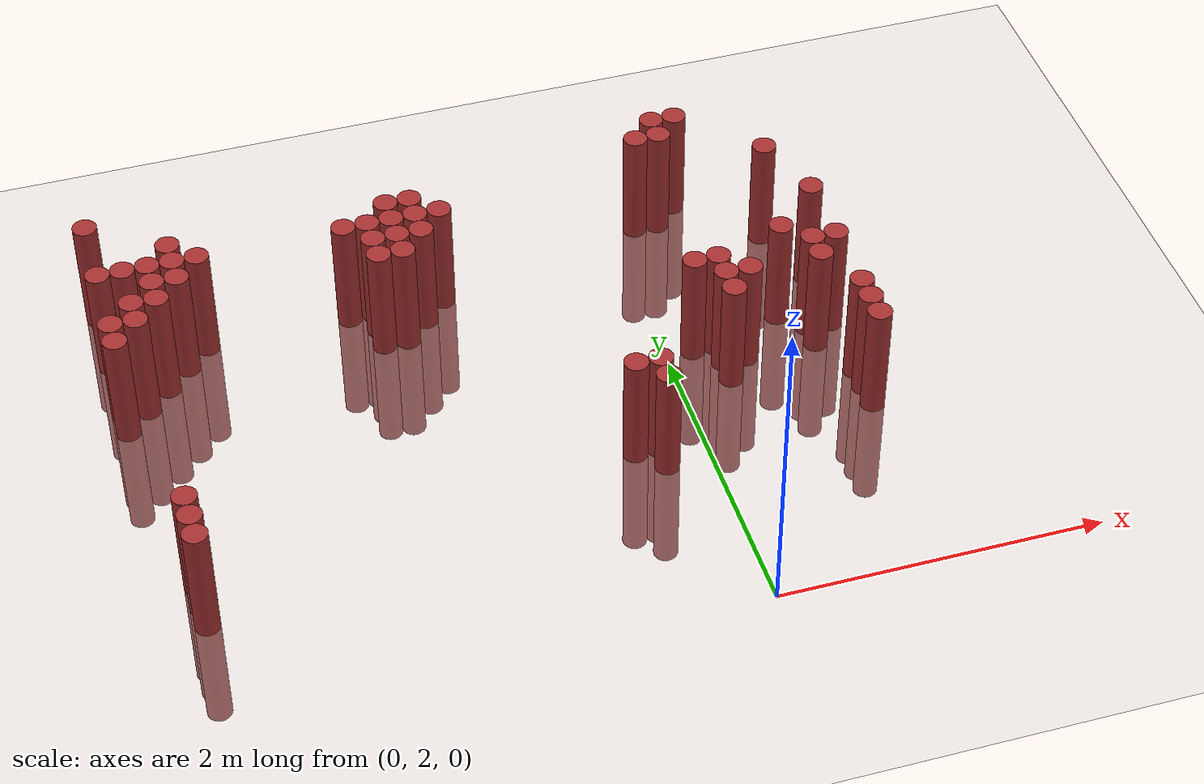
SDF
<sdf version="1.6">
 <world name="default">
  <model name="ground_plane">
   <static>1</static>
   <link name="link">
    <collision name="collision">
     <geometry><plane><normal>0 0 1</normal><size>100 100</size></plane></geometry>
     <surface><friction><ode><mu>100</mu><mu2>50</mu2></ode></friction></surface>
    </collision>
    <visual name="visual">
     <cast_shadows>0</cast_shadows>
     <geometry><plane><normal>0 0 1</normal><size>100 100</size></plane></geometry>
     <material>
      <script><uri>file://media/materials/scripts/gazebo.material</uri><name>Gazebo/Grey</name></script>
     </material>
    </visual>
   </link>
  </model>
  <model name="unit_cylinder_276">
   <static>1</static>
   <pose>-3.275000 4.375000 0.000000 0.000000 0.000000 0.000000</pose>
   <link name="link">
    <inertial>
     <mass>1</mass>
     <inertia><ixx>0.145833</ixx><ixy>0</ixy><ixz>0</ixz><iyy>0.145833</iyy><iyz>0</iyz><izz>0.125</izz></inertia>
    </inertial>
    <collision name="collision">
     <geometry><cylinder><radius>0.075000</radius><length>1.5</length></cylinder></geometry>
    </collision>
    <visual name="visual">
     <geometry><cylinder><radius>0.075000</radius><length>1.5</length></cylinder></geometry>
     <material>
      <ambient>0.648000 0.192000 0.192000 1</ambient>
      <diffuse>0.648000 0.192000 0.192000 1</diffuse>
     </material>
     <material>
      <script><name>Gazebo/Grey</name><uri>file://media/materials/scripts/gazebo.material</uri></script>
     </material>
    </visual>
   </link>
  </model>
  <model name="unit_cylinder_277">
   <static>1</static>
   <pose>-3.275000 4.525000 0.000000 0.000000 0.000000 0.000000</pose>
   <link name="link">
    <inertial>
     <mass>1</mass>
     <inertia><ixx>0.145833</ixx><ixy>0</ixy><ixz>0</ixz><iyy>0.145833</iyy><iyz>0</iyz><izz>0.125</izz></inertia>
    </inertial>
    <collision name="collision">
     <geometry><cylinder><radius>0.075000</radius><length>1.5</length></cylinder></geometry>
    </collision>
    <visual name="visual">
     <geometry><cylinder><radius>0.075000</radius><length>1.5</length></cylinder></geometry>
     <material>
      <ambient>0.648000 0.192000 0.192000 1</ambient>
      <diffuse>0.648000 0.192000 0.192000 1</diffuse>
     </material>
     <material>
      <script><name>Gazebo/Grey</name><uri>file://media/materials/scripts/gazebo.material</uri></script>
     </material>
    </visual>
   </link>
  </model>
  <model name="unit_cylinder_278">
   <static>1</static>
   <pose>-3.275000 4.975000 0.000000 0.000000 0.000000 0.000000</pose>
   <link name="link">
    <inertial>
     <mass>1</mass>
     <inertia><ixx>0.145833</ixx><ixy>0</ixy><ixz>0</ixz><iyy>0.145833</iyy><iyz>0</iyz><izz>0.125</izz></inertia>
    </inertial>
    <collision name="collision">
     <geometry><cylinder><radius>0.075000</radius><length>1.5</length></cylinder></geometry>
    </collision>
    <visual name="visual">
     <geometry><cylinder><radius>0.075000</radius><length>1.5</length></cylinder></geometry>
     <material>
      <ambient>0.648000 0.192000 0.192000 1</ambient>
      <diffuse>0.648000 0.192000 0.192000 1</diffuse>
     </material>
     <material>
      <script><name>Gazebo/Grey</name><uri>file://media/materials/scripts/gazebo.material</uri></script>
     </material>
    </visual>
   </link>
  </model>
  <model name="unit_cylinder_279">
   <static>1</static>
   <pose>-3.275000 5.425000 0.000000 0.000000 0.000000 0.000000</pose>
   <link name="link">
    <inertial>
     <mass>1</mass>
     <inertia><ixx>0.145833</ixx><ixy>0</ixy><ixz>0</ixz><iyy>0.145833</iyy><iyz>0</iyz><izz>0.125</izz></inertia>
    </inertial>
    <collision name="collision">
     <geometry><cylinder><radius>0.075000</radius><length>1.5</length></cylinder></geometry>
    </collision>
    <visual name="visual">
     <geometry><cylinder><radius>0.075000</radius><length>1.5</length></cylinder></geometry>
     <material>
      <ambient>0.648000 0.192000 0.192000 1</ambient>
      <diffuse>0.648000 0.192000 0.192000 1</diffuse>
     </material>
     <material>
      <script><name>Gazebo/Grey</name><uri>file://media/materials/scripts/gazebo.material</uri></script>
     </material>
    </visual>
   </link>
  </model>
  <model name="unit_cylinder_285">
   <static>1</static>
   <pose>-3.125000 2.725000 0.000000 0.000000 0.000000 0.000000</pose>
   <link name="link">
    <inertial>
     <mass>1</mass>
     <inertia><ixx>0.145833</ixx><ixy>0</ixy><ixz>0</ixz><iyy>0.145833</iyy><iyz>0</iyz><izz>0.125</izz></inertia>
    </inertial>
    <collision name="collision">
     <geometry><cylinder><radius>0.075000</radius><length>1.5</length></cylinder></geometry>
    </collision>
    <visual name="visual">
     <geometry><cylinder><radius>0.075000</radius><length>1.5</length></cylinder></geometry>
     <material>
      <ambient>0.648000 0.192000 0.192000 1</ambient>
      <diffuse>0.648000 0.192000 0.192000 1</diffuse>
     </material>
     <material>
      <script><name>Gazebo/Grey</name><uri>file://media/materials/scripts/gazebo.material</uri></script>
     </material>
    </visual>
   </link>
  </model>
  <model name="unit_cylinder_286">
   <static>1</static>
   <pose>-3.125000 2.875000 0.000000 0.000000 0.000000 0.000000</pose>
   <link name="link">
    <inertial>
     <mass>1</mass>
     <inertia><ixx>0.145833</ixx><ixy>0</ixy><ixz>0</ixz><iyy>0.145833</iyy><iyz>0</iyz><izz>0.125</izz></inertia>
    </inertial>
    <collision name="collision">
     <geometry><cylinder><radius>0.075000</radius><length>1.5</length></cylinder></geometry>
    </collision>
    <visual name="visual">
     <geometry><cylinder><radius>0.075000</radius><length>1.5</length></cylinder></geometry>
     <material>
      <ambient>0.648000 0.192000 0.192000 1</ambient>
      <diffuse>0.648000 0.192000 0.192000 1</diffuse>
     </material>
     <material>
      <script><name>Gazebo/Grey</name><uri>file://media/materials/scripts/gazebo.material</uri></script>
     </material>
    </visual>
   </link>
  </model>
  <model name="unit_cylinder_287">
   <static>1</static>
   <pose>-3.125000 3.025000 0.000000 0.000000 0.000000 0.000000</pose>
   <link name="link">
    <inertial>
     <mass>1</mass>
     <inertia><ixx>0.145833</ixx><ixy>0</ixy><ixz>0</ixz><iyy>0.145833</iyy><iyz>0</iyz><izz>0.125</izz></inertia>
    </inertial>
    <collision name="collision">
     <geometry><cylinder><radius>0.075000</radius><length>1.5</length></cylinder></geometry>
    </collision>
    <visual name="visual">
     <geometry><cylinder><radius>0.075000</radius><length>1.5</length></cylinder></geometry>
     <material>
      <ambient>0.648000 0.192000 0.192000 1</ambient>
      <diffuse>0.648000 0.192000 0.192000 1</diffuse>
     </material>
     <material>
      <script><name>Gazebo/Grey</name><uri>file://media/materials/scripts/gazebo.material</uri></script>
     </material>
    </visual>
   </link>
  </model>
  <model name="unit_cylinder_288">
   <static>1</static>
   <pose>-3.125000 4.525000 0.000000 0.000000 0.000000 0.000000</pose>
   <link name="link">
    <inertial>
     <mass>1</mass>
     <inertia><ixx>0.145833</ixx><ixy>0</ixy><ixz>0</ixz><iyy>0.145833</iyy><iyz>0</iyz><izz>0.125</izz></inertia>
    </inertial>
    <collision name="collision">
     <geometry><cylinder><radius>0.075000</radius><length>1.5</length></cylinder></geometry>
    </collision>
    <visual name="visual">
     <geometry><cylinder><radius>0.075000</radius><length>1.5</length></cylinder></geometry>
     <material>
      <ambient>0.648000 0.192000 0.192000 1</ambient>
      <diffuse>0.648000 0.192000 0.192000 1</diffuse>
     </material>
     <material>
      <script><name>Gazebo/Grey</name><uri>file://media/materials/scripts/gazebo.material</uri></script>
     </material>
    </visual>
   </link>
  </model>
  <model name="unit_cylinder_289">
   <static>1</static>
   <pose>-3.125000 4.675000 0.000000 0.000000 0.000000 0.000000</pose>
   <link name="link">
    <inertial>
     <mass>1</mass>
     <inertia><ixx>0.145833</ixx><ixy>0</ixy><ixz>0</ixz><iyy>0.145833</iyy><iyz>0</iyz><izz>0.125</izz></inertia>
    </inertial>
    <collision name="collision">
     <geometry><cylinder><radius>0.075000</radius><length>1.5</length></cylinder></geometry>
    </collision>
    <visual name="visual">
     <geometry><cylinder><radius>0.075000</radius><length>1.5</length></cylinder></geometry>
     <material>
      <ambient>0.648000 0.192000 0.192000 1</ambient>
      <diffuse>0.648000 0.192000 0.192000 1</diffuse>
     </material>
     <material>
      <script><name>Gazebo/Grey</name><uri>file://media/materials/scripts/gazebo.material</uri></script>
     </material>
    </visual>
   </link>
  </model>
  <model name="unit_cylinder_290">
   <static>1</static>
   <pose>-3.125000 4.975000 0.000000 0.000000 0.000000 0.000000</pose>
   <link name="link">
    <inertial>
     <mass>1</mass>
     <inertia><ixx>0.145833</ixx><ixy>0</ixy><ixz>0</ixz><iyy>0.145833</iyy><iyz>0</iyz><izz>0.125</izz></inertia>
    </inertial>
    <collision name="collision">
     <geometry><cylinder><radius>0.075000</radius><length>1.5</length></cylinder></geometry>
    </collision>
    <visual name="visual">
     <geometry><cylinder><radius>0.075000</radius><length>1.5</length></cylinder></geometry>
     <material>
      <ambient>0.648000 0.192000 0.192000 1</ambient>
      <diffuse>0.648000 0.192000 0.192000 1</diffuse>
     </material>
     <material>
      <script><name>Gazebo/Grey</name><uri>file://media/materials/scripts/gazebo.material</uri></script>
     </material>
    </visual>
   </link>
  </model>
  <model name="unit_cylinder_295">
   <static>1</static>
   <pose>-2.975000 4.675000 0.000000 0.000000 0.000000 0.000000</pose>
   <link name="link">
    <inertial>
     <mass>1</mass>
     <inertia><ixx>0.145833</ixx><ixy>0</ixy><ixz>0</ixz><iyy>0.145833</iyy><iyz>0</iyz><izz>0.125</izz></inertia>
    </inertial>
    <collision name="collision">
     <geometry><cylinder><radius>0.075000</radius><length>1.5</length></cylinder></geometry>
    </collision>
    <visual name="visual">
     <geometry><cylinder><radius>0.075000</radius><length>1.5</length></cylinder></geometry>
     <material>
      <ambient>0.648000 0.192000 0.192000 1</ambient>
      <diffuse>0.648000 0.192000 0.192000 1</diffuse>
     </material>
     <material>
      <script><name>Gazebo/Grey</name><uri>file://media/materials/scripts/gazebo.material</uri></script>
     </material>
    </visual>
   </link>
  </model>
  <model name="unit_cylinder_296">
   <static>1</static>
   <pose>-2.975000 4.825000 0.000000 0.000000 0.000000 0.000000</pose>
   <link name="link">
    <inertial>
     <mass>1</mass>
     <inertia><ixx>0.145833</ixx><ixy>0</ixy><ixz>0</ixz><iyy>0.145833</iyy><iyz>0</iyz><izz>0.125</izz></inertia>
    </inertial>
    <collision name="collision">
     <geometry><cylinder><radius>0.075000</radius><length>1.5</length></cylinder></geometry>
    </collision>
    <visual name="visual">
     <geometry><cylinder><radius>0.075000</radius><length>1.5</length></cylinder></geometry>
     <material>
      <ambient>0.648000 0.192000 0.192000 1</ambient>
      <diffuse>0.648000 0.192000 0.192000 1</diffuse>
     </material>
     <material>
      <script><name>Gazebo/Grey</name><uri>file://media/materials/scripts/gazebo.material</uri></script>
     </material>
    </visual>
   </link>
  </model>
  <model name="unit_cylinder_297">
   <static>1</static>
   <pose>-2.975000 4.975000 0.000000 0.000000 0.000000 0.000000</pose>
   <link name="link">
    <inertial>
     <mass>1</mass>
     <inertia><ixx>0.145833</ixx><ixy>0</ixy><ixz>0</ixz><iyy>0.145833</iyy><iyz>0</iyz><izz>0.125</izz></inertia>
    </inertial>
    <collision name="collision">
     <geometry><cylinder><radius>0.075000</radius><length>1.5</length></cylinder></geometry>
    </collision>
    <visual name="visual">
     <geometry><cylinder><radius>0.075000</radius><length>1.5</length></cylinder></geometry>
     <material>
      <ambient>0.648000 0.192000 0.192000 1</ambient>
      <diffuse>0.648000 0.192000 0.192000 1</diffuse>
     </material>
     <material>
      <script><name>Gazebo/Grey</name><uri>file://media/materials/scripts/gazebo.material</uri></script>
     </material>
    </visual>
   </link>
  </model>
  <model name="unit_cylinder_299">
   <static>1</static>
   <pose>-2.825000 4.825000 0.000000 0.000000 0.000000 0.000000</pose>
   <link name="link">
    <inertial>
     <mass>1</mass>
     <inertia><ixx>0.145833</ixx><ixy>0</ixy><ixz>0</ixz><iyy>0.145833</iyy><iyz>0</iyz><izz>0.125</izz></inertia>
    </inertial>
    <collision name="collision">
     <geometry><cylinder><radius>0.075000</radius><length>1.5</length></cylinder></geometry>
    </collision>
    <visual name="visual">
     <geometry><cylinder><radius>0.075000</radius><length>1.5</length></cylinder></geometry>
     <material>
      <ambient>0.648000 0.192000 0.192000 1</ambient>
      <diffuse>0.648000 0.192000 0.192000 1</diffuse>
     </material>
     <material>
      <script><name>Gazebo/Grey</name><uri>file://media/materials/scripts/gazebo.material</uri></script>
     </material>
    </visual>
   </link>
  </model>
  <model name="unit_cylinder_300">
   <static>1</static>
   <pose>-2.825000 4.975000 0.000000 0.000000 0.000000 0.000000</pose>
   <link name="link">
    <inertial>
     <mass>1</mass>
     <inertia><ixx>0.145833</ixx><ixy>0</ixy><ixz>0</ixz><iyy>0.145833</iyy><iyz>0</iyz><izz>0.125</izz></inertia>
    </inertial>
    <collision name="collision">
     <geometry><cylinder><radius>0.075000</radius><length>1.5</length></cylinder></geometry>
    </collision>
    <visual name="visual">
     <geometry><cylinder><radius>0.075000</radius><length>1.5</length></cylinder></geometry>
     <material>
      <ambient>0.648000 0.192000 0.192000 1</ambient>
      <diffuse>0.648000 0.192000 0.192000 1</diffuse>
     </material>
     <material>
      <script><name>Gazebo/Grey</name><uri>file://media/materials/scripts/gazebo.material</uri></script>
     </material>
    </visual>
   </link>
  </model>
  <model name="unit_cylinder_301">
   <static>1</static>
   <pose>-2.825000 5.125000 0.000000 0.000000 0.000000 0.000000</pose>
   <link name="link">
    <inertial>
     <mass>1</mass>
     <inertia><ixx>0.145833</ixx><ixy>0</ixy><ixz>0</ixz><iyy>0.145833</iyy><iyz>0</iyz><izz>0.125</izz></inertia>
    </inertial>
    <collision name="collision">
     <geometry><cylinder><radius>0.075000</radius><length>1.5</length></cylinder></geometry>
    </collision>
    <visual name="visual">
     <geometry><cylinder><radius>0.075000</radius><length>1.5</length></cylinder></geometry>
     <material>
      <ambient>0.648000 0.192000 0.192000 1</ambient>
      <diffuse>0.648000 0.192000 0.192000 1</diffuse>
     </material>
     <material>
      <script><name>Gazebo/Grey</name><uri>file://media/materials/scripts/gazebo.material</uri></script>
     </material>
    </visual>
   </link>
  </model>
  <model name="unit_cylinder_302">
   <static>1</static>
   <pose>-2.675000 4.975000 0.000000 0.000000 0.000000 0.000000</pose>
   <link name="link">
    <inertial>
     <mass>1</mass>
     <inertia><ixx>0.145833</ixx><ixy>0</ixy><ixz>0</ixz><iyy>0.145833</iyy><iyz>0</iyz><izz>0.125</izz></inertia>
    </inertial>
    <collision name="collision">
     <geometry><cylinder><radius>0.075000</radius><length>1.5</length></cylinder></geometry>
    </collision>
    <visual name="visual">
     <geometry><cylinder><radius>0.075000</radius><length>1.5</length></cylinder></geometry>
     <material>
      <ambient>0.648000 0.192000 0.192000 1</ambient>
      <diffuse>0.648000 0.192000 0.192000 1</diffuse>
     </material>
     <material>
      <script><name>Gazebo/Grey</name><uri>file://media/materials/scripts/gazebo.material</uri></script>
     </material>
    </visual>
   </link>
  </model>
  <model name="unit_cylinder_303">
   <static>1</static>
   <pose>-1.775000 4.975000 0.000000 0.000000 0.000000 0.000000</pose>
   <link name="link">
    <inertial>
     <mass>1</mass>
     <inertia><ixx>0.145833</ixx><ixy>0</ixy><ixz>0</ixz><iyy>0.145833</iyy><iyz>0</iyz><izz>0.125</izz></inertia>
    </inertial>
    <collision name="collision">
     <geometry><cylinder><radius>0.075000</radius><length>1.5</length></cylinder></geometry>
    </collision>
    <visual name="visual">
     <geometry><cylinder><radius>0.075000</radius><length>1.5</length></cylinder></geometry>
     <material>
      <ambient>0.648000 0.192000 0.192000 1</ambient>
      <diffuse>0.648000 0.192000 0.192000 1</diffuse>
     </material>
     <material>
      <script><name>Gazebo/Grey</name><uri>file://media/materials/scripts/gazebo.material</uri></script>
     </material>
    </visual>
   </link>
  </model>
  <model name="unit_cylinder_304">
   <static>1</static>
   <pose>-1.625000 4.675000 0.000000 0.000000 0.000000 0.000000</pose>
   <link name="link">
    <inertial>
     <mass>1</mass>
     <inertia><ixx>0.145833</ixx><ixy>0</ixy><ixz>0</ixz><iyy>0.145833</iyy><iyz>0</iyz><izz>0.125</izz></inertia>
    </inertial>
    <collision name="collision">
     <geometry><cylinder><radius>0.075000</radius><length>1.5</length></cylinder></geometry>
    </collision>
    <visual name="visual">
     <geometry><cylinder><radius>0.075000</radius><length>1.5</length></cylinder></geometry>
     <material>
      <ambient>0.648000 0.192000 0.192000 1</ambient>
      <diffuse>0.648000 0.192000 0.192000 1</diffuse>
     </material>
     <material>
      <script><name>Gazebo/Grey</name><uri>file://media/materials/scripts/gazebo.material</uri></script>
     </material>
    </visual>
   </link>
  </model>
  <model name="unit_cylinder_305">
   <static>1</static>
   <pose>-1.625000 4.825000 0.000000 0.000000 0.000000 0.000000</pose>
   <link name="link">
    <inertial>
     <mass>1</mass>
     <inertia><ixx>0.145833</ixx><ixy>0</ixy><ixz>0</ixz><iyy>0.145833</iyy><iyz>0</iyz><izz>0.125</izz></inertia>
    </inertial>
    <collision name="collision">
     <geometry><cylinder><radius>0.075000</radius><length>1.5</length></cylinder></geometry>
    </collision>
    <visual name="visual">
     <geometry><cylinder><radius>0.075000</radius><length>1.5</length></cylinder></geometry>
     <material>
      <ambient>0.648000 0.192000 0.192000 1</ambient>
      <diffuse>0.648000 0.192000 0.192000 1</diffuse>
     </material>
     <material>
      <script><name>Gazebo/Grey</name><uri>file://media/materials/scripts/gazebo.material</uri></script>
     </material>
    </visual>
   </link>
  </model>
  <model name="unit_cylinder_306">
   <static>1</static>
   <pose>-1.625000 4.975000 0.000000 0.000000 0.000000 0.000000</pose>
   <link name="link">
    <inertial>
     <mass>1</mass>
     <inertia><ixx>0.145833</ixx><ixy>0</ixy><ixz>0</ixz><iyy>0.145833</iyy><iyz>0</iyz><izz>0.125</izz></inertia>
    </inertial>
    <collision name="collision">
     <geometry><cylinder><radius>0.075000</radius><length>1.5</length></cylinder></geometry>
    </collision>
    <visual name="visual">
     <geometry><cylinder><radius>0.075000</radius><length>1.5</length></cylinder></geometry>
     <material>
      <ambient>0.648000 0.192000 0.192000 1</ambient>
      <diffuse>0.648000 0.192000 0.192000 1</diffuse>
     </material>
     <material>
      <script><name>Gazebo/Grey</name><uri>file://media/materials/scripts/gazebo.material</uri></script>
     </material>
    </visual>
   </link>
  </model>
  <model name="unit_cylinder_314">
   <static>1</static>
   <pose>-1.475000 4.675000 0.000000 0.000000 0.000000 0.000000</pose>
   <link name="link">
    <inertial>
     <mass>1</mass>
     <inertia><ixx>0.145833</ixx><ixy>0</ixy><ixz>0</ixz><iyy>0.145833</iyy><iyz>0</iyz><izz>0.125</izz></inertia>
    </inertial>
    <collision name="collision">
     <geometry><cylinder><radius>0.075000</radius><length>1.5</length></cylinder></geometry>
    </collision>
    <visual name="visual">
     <geometry><cylinder><radius>0.075000</radius><length>1.5</length></cylinder></geometry>
     <material>
      <ambient>0.648000 0.192000 0.192000 1</ambient>
      <diffuse>0.648000 0.192000 0.192000 1</diffuse>
     </material>
     <material>
      <script><name>Gazebo/Grey</name><uri>file://media/materials/scripts/gazebo.material</uri></script>
     </material>
    </visual>
   </link>
  </model>
  <model name="unit_cylinder_315">
   <static>1</static>
   <pose>-1.475000 4.825000 0.000000 0.000000 0.000000 0.000000</pose>
   <link name="link">
    <inertial>
     <mass>1</mass>
     <inertia><ixx>0.145833</ixx><ixy>0</ixy><ixz>0</ixz><iyy>0.145833</iyy><iyz>0</iyz><izz>0.125</izz></inertia>
    </inertial>
    <collision name="collision">
     <geometry><cylinder><radius>0.075000</radius><length>1.5</length></cylinder></geometry>
    </collision>
    <visual name="visual">
     <geometry><cylinder><radius>0.075000</radius><length>1.5</length></cylinder></geometry>
     <material>
      <ambient>0.648000 0.192000 0.192000 1</ambient>
      <diffuse>0.648000 0.192000 0.192000 1</diffuse>
     </material>
     <material>
      <script><name>Gazebo/Grey</name><uri>file://media/materials/scripts/gazebo.material</uri></script>
     </material>
    </visual>
   </link>
  </model>
  <model name="unit_cylinder_316">
   <static>1</static>
   <pose>-1.475000 4.975000 0.000000 0.000000 0.000000 0.000000</pose>
   <link name="link">
    <inertial>
     <mass>1</mass>
     <inertia><ixx>0.145833</ixx><ixy>0</ixy><ixz>0</ixz><iyy>0.145833</iyy><iyz>0</iyz><izz>0.125</izz></inertia>
    </inertial>
    <collision name="collision">
     <geometry><cylinder><radius>0.075000</radius><length>1.5</length></cylinder></geometry>
    </collision>
    <visual name="visual">
     <geometry><cylinder><radius>0.075000</radius><length>1.5</length></cylinder></geometry>
     <material>
      <ambient>0.648000 0.192000 0.192000 1</ambient>
      <diffuse>0.648000 0.192000 0.192000 1</diffuse>
     </material>
     <material>
      <script><name>Gazebo/Grey</name><uri>file://media/materials/scripts/gazebo.material</uri></script>
     </material>
    </visual>
   </link>
  </model>
  <model name="unit_cylinder_317">
   <static>1</static>
   <pose>-1.475000 5.125000 0.000000 0.000000 0.000000 0.000000</pose>
   <link name="link">
    <inertial>
     <mass>1</mass>
     <inertia><ixx>0.145833</ixx><ixy>0</ixy><ixz>0</ixz><iyy>0.145833</iyy><iyz>0</iyz><izz>0.125</izz></inertia>
    </inertial>
    <collision name="collision">
     <geometry><cylinder><radius>0.075000</radius><length>1.5</length></cylinder></geometry>
    </collision>
    <visual name="visual">
     <geometry><cylinder><radius>0.075000</radius><length>1.5</length></cylinder></geometry>
     <material>
      <ambient>0.648000 0.192000 0.192000 1</ambient>
      <diffuse>0.648000 0.192000 0.192000 1</diffuse>
     </material>
     <material>
      <script><name>Gazebo/Grey</name><uri>file://media/materials/scripts/gazebo.material</uri></script>
     </material>
    </visual>
   </link>
  </model>
  <model name="unit_cylinder_324">
   <static>1</static>
   <pose>-1.325000 4.825000 0.000000 0.000000 0.000000 0.000000</pose>
   <link name="link">
    <inertial>
     <mass>1</mass>
     <inertia><ixx>0.145833</ixx><ixy>0</ixy><ixz>0</ixz><iyy>0.145833</iyy><iyz>0</iyz><izz>0.125</izz></inertia>
    </inertial>
    <collision name="collision">
     <geometry><cylinder><radius>0.075000</radius><length>1.5</length></cylinder></geometry>
    </collision>
    <visual name="visual">
     <geometry><cylinder><radius>0.075000</radius><length>1.5</length></cylinder></geometry>
     <material>
      <ambient>0.648000 0.192000 0.192000 1</ambient>
      <diffuse>0.648000 0.192000 0.192000 1</diffuse>
     </material>
     <material>
      <script><name>Gazebo/Grey</name><uri>file://media/materials/scripts/gazebo.material</uri></script>
     </material>
    </visual>
   </link>
  </model>
  <model name="unit_cylinder_325">
   <static>1</static>
   <pose>-1.325000 4.975000 0.000000 0.000000 0.000000 0.000000</pose>
   <link name="link">
    <inertial>
     <mass>1</mass>
     <inertia><ixx>0.145833</ixx><ixy>0</ixy><ixz>0</ixz><iyy>0.145833</iyy><iyz>0</iyz><izz>0.125</izz></inertia>
    </inertial>
    <collision name="collision">
     <geometry><cylinder><radius>0.075000</radius><length>1.5</length></cylinder></geometry>
    </collision>
    <visual name="visual">
     <geometry><cylinder><radius>0.075000</radius><length>1.5</length></cylinder></geometry>
     <material>
      <ambient>0.648000 0.192000 0.192000 1</ambient>
      <diffuse>0.648000 0.192000 0.192000 1</diffuse>
     </material>
     <material>
      <script><name>Gazebo/Grey</name><uri>file://media/materials/scripts/gazebo.material</uri></script>
     </material>
    </visual>
   </link>
  </model>
  <model name="unit_cylinder_326">
   <static>1</static>
   <pose>-1.325000 5.125000 0.000000 0.000000 0.000000 0.000000</pose>
   <link name="link">
    <inertial>
     <mass>1</mass>
     <inertia><ixx>0.145833</ixx><ixy>0</ixy><ixz>0</ixz><iyy>0.145833</iyy><iyz>0</iyz><izz>0.125</izz></inertia>
    </inertial>
    <collision name="collision">
     <geometry><cylinder><radius>0.075000</radius><length>1.5</length></cylinder></geometry>
    </collision>
    <visual name="visual">
     <geometry><cylinder><radius>0.075000</radius><length>1.5</length></cylinder></geometry>
     <material>
      <ambient>0.648000 0.192000 0.192000 1</ambient>
      <diffuse>0.648000 0.192000 0.192000 1</diffuse>
     </material>
     <material>
      <script><name>Gazebo/Grey</name><uri>file://media/materials/scripts/gazebo.material</uri></script>
     </material>
    </visual>
   </link>
  </model>
  <model name="unit_cylinder_329">
   <static>1</static>
   <pose>-1.175000 4.975000 0.000000 0.000000 0.000000 0.000000</pose>
   <link name="link">
    <inertial>
     <mass>1</mass>
     <inertia><ixx>0.145833</ixx><ixy>0</ixy><ixz>0</ixz><iyy>0.145833</iyy><iyz>0</iyz><izz>0.125</izz></inertia>
    </inertial>
    <collision name="collision">
     <geometry><cylinder><radius>0.075000</radius><length>1.5</length></cylinder></geometry>
    </collision>
    <visual name="visual">
     <geometry><cylinder><radius>0.075000</radius><length>1.5</length></cylinder></geometry>
     <material>
      <ambient>0.648000 0.192000 0.192000 1</ambient>
      <diffuse>0.648000 0.192000 0.192000 1</diffuse>
     </material>
     <material>
      <script><name>Gazebo/Grey</name><uri>file://media/materials/scripts/gazebo.material</uri></script>
     </material>
    </visual>
   </link>
  </model>
  <model name="unit_cylinder_336">
   <static>1</static>
   <pose>-0.425000 3.325000 0.000000 0.000000 0.000000 0.000000</pose>
   <link name="link">
    <inertial>
     <mass>1</mass>
     <inertia><ixx>0.145833</ixx><ixy>0</ixy><ixz>0</ixz><iyy>0.145833</iyy><iyz>0</iyz><izz>0.125</izz></inertia>
    </inertial>
    <collision name="collision">
     <geometry><cylinder><radius>0.075000</radius><length>1.5</length></cylinder></geometry>
    </collision>
    <visual name="visual">
     <geometry><cylinder><radius>0.075000</radius><length>1.5</length></cylinder></geometry>
     <material>
      <ambient>0.648000 0.192000 0.192000 1</ambient>
      <diffuse>0.648000 0.192000 0.192000 1</diffuse>
     </material>
     <material>
      <script><name>Gazebo/Grey</name><uri>file://media/materials/scripts/gazebo.material</uri></script>
     </material>
    </visual>
   </link>
  </model>
  <model name="unit_cylinder_337">
   <static>1</static>
   <pose>-0.275000 3.175000 0.000000 0.000000 0.000000 0.000000</pose>
   <link name="link">
    <inertial>
     <mass>1</mass>
     <inertia><ixx>0.145833</ixx><ixy>0</ixy><ixz>0</ixz><iyy>0.145833</iyy><iyz>0</iyz><izz>0.125</izz></inertia>
    </inertial>
    <collision name="collision">
     <geometry><cylinder><radius>0.075000</radius><length>1.5</length></cylinder></geometry>
    </collision>
    <visual name="visual">
     <geometry><cylinder><radius>0.075000</radius><length>1.5</length></cylinder></geometry>
     <material>
      <ambient>0.648000 0.192000 0.192000 1</ambient>
      <diffuse>0.648000 0.192000 0.192000 1</diffuse>
     </material>
     <material>
      <script><name>Gazebo/Grey</name><uri>file://media/materials/scripts/gazebo.material</uri></script>
     </material>
    </visual>
   </link>
  </model>
  <model name="unit_cylinder_338">
   <static>1</static>
   <pose>-0.275000 3.325000 0.000000 0.000000 0.000000 0.000000</pose>
   <link name="link">
    <inertial>
     <mass>1</mass>
     <inertia><ixx>0.145833</ixx><ixy>0</ixy><ixz>0</ixz><iyy>0.145833</iyy><iyz>0</iyz><izz>0.125</izz></inertia>
    </inertial>
    <collision name="collision">
     <geometry><cylinder><radius>0.075000</radius><length>1.5</length></cylinder></geometry>
    </collision>
    <visual name="visual">
     <geometry><cylinder><radius>0.075000</radius><length>1.5</length></cylinder></geometry>
     <material>
      <ambient>0.648000 0.192000 0.192000 1</ambient>
      <diffuse>0.648000 0.192000 0.192000 1</diffuse>
     </material>
     <material>
      <script><name>Gazebo/Grey</name><uri>file://media/materials/scripts/gazebo.material</uri></script>
     </material>
    </visual>
   </link>
  </model>
  <model name="unit_cylinder_345">
   <static>1</static>
   <pose>0.175000 4.075000 0.000000 0.000000 0.000000 0.000000</pose>
   <link name="link">
    <inertial>
     <mass>1</mass>
     <inertia><ixx>0.145833</ixx><ixy>0</ixy><ixz>0</ixz><iyy>0.145833</iyy><iyz>0</iyz><izz>0.125</izz></inertia>
    </inertial>
    <collision name="collision">
     <geometry><cylinder><radius>0.075000</radius><length>1.5</length></cylinder></geometry>
    </collision>
    <visual name="visual">
     <geometry><cylinder><radius>0.075000</radius><length>1.5</length></cylinder></geometry>
     <material>
      <ambient>0.648000 0.192000 0.192000 1</ambient>
      <diffuse>0.648000 0.192000 0.192000 1</diffuse>
     </material>
     <material>
      <script><name>Gazebo/Grey</name><uri>file://media/materials/scripts/gazebo.material</uri></script>
     </material>
    </visual>
   </link>
  </model>
  <model name="unit_cylinder_346">
   <static>1</static>
   <pose>0.175000 5.275000 0.000000 0.000000 0.000000 0.000000</pose>
   <link name="link">
    <inertial>
     <mass>1</mass>
     <inertia><ixx>0.145833</ixx><ixy>0</ixy><ixz>0</ixz><iyy>0.145833</iyy><iyz>0</iyz><izz>0.125</izz></inertia>
    </inertial>
    <collision name="collision">
     <geometry><cylinder><radius>0.075000</radius><length>1.5</length></cylinder></geometry>
    </collision>
    <visual name="visual">
     <geometry><cylinder><radius>0.075000</radius><length>1.5</length></cylinder></geometry>
     <material>
      <ambient>0.648000 0.192000 0.192000 1</ambient>
      <diffuse>0.648000 0.192000 0.192000 1</diffuse>
     </material>
     <material>
      <script><name>Gazebo/Grey</name><uri>file://media/materials/scripts/gazebo.material</uri></script>
     </material>
    </visual>
   </link>
  </model>
  <model name="unit_cylinder_348">
   <static>1</static>
   <pose>0.325000 3.775000 0.000000 0.000000 0.000000 0.000000</pose>
   <link name="link">
    <inertial>
     <mass>1</mass>
     <inertia><ixx>0.145833</ixx><ixy>0</ixy><ixz>0</ixz><iyy>0.145833</iyy><iyz>0</iyz><izz>0.125</izz></inertia>
    </inertial>
    <collision name="collision">
     <geometry><cylinder><radius>0.075000</radius><length>1.5</length></cylinder></geometry>
    </collision>
    <visual name="visual">
     <geometry><cylinder><radius>0.075000</radius><length>1.5</length></cylinder></geometry>
     <material>
      <ambient>0.648000 0.192000 0.192000 1</ambient>
      <diffuse>0.648000 0.192000 0.192000 1</diffuse>
     </material>
     <material>
      <script><name>Gazebo/Grey</name><uri>file://media/materials/scripts/gazebo.material</uri></script>
     </material>
    </visual>
   </link>
  </model>
  <model name="unit_cylinder_349">
   <static>1</static>
   <pose>0.325000 3.925000 0.000000 0.000000 0.000000 0.000000</pose>
   <link name="link">
    <inertial>
     <mass>1</mass>
     <inertia><ixx>0.145833</ixx><ixy>0</ixy><ixz>0</ixz><iyy>0.145833</iyy><iyz>0</iyz><izz>0.125</izz></inertia>
    </inertial>
    <collision name="collision">
     <geometry><cylinder><radius>0.075000</radius><length>1.5</length></cylinder></geometry>
    </collision>
    <visual name="visual">
     <geometry><cylinder><radius>0.075000</radius><length>1.5</length></cylinder></geometry>
     <material>
      <ambient>0.648000 0.192000 0.192000 1</ambient>
      <diffuse>0.648000 0.192000 0.192000 1</diffuse>
     </material>
     <material>
      <script><name>Gazebo/Grey</name><uri>file://media/materials/scripts/gazebo.material</uri></script>
     </material>
    </visual>
   </link>
  </model>
  <model name="unit_cylinder_350">
   <static>1</static>
   <pose>0.325000 4.075000 0.000000 0.000000 0.000000 0.000000</pose>
   <link name="link">
    <inertial>
     <mass>1</mass>
     <inertia><ixx>0.145833</ixx><ixy>0</ixy><ixz>0</ixz><iyy>0.145833</iyy><iyz>0</iyz><izz>0.125</izz></inertia>
    </inertial>
    <collision name="collision">
     <geometry><cylinder><radius>0.075000</radius><length>1.5</length></cylinder></geometry>
    </collision>
    <visual name="visual">
     <geometry><cylinder><radius>0.075000</radius><length>1.5</length></cylinder></geometry>
     <material>
      <ambient>0.648000 0.192000 0.192000 1</ambient>
      <diffuse>0.648000 0.192000 0.192000 1</diffuse>
     </material>
     <material>
      <script><name>Gazebo/Grey</name><uri>file://media/materials/scripts/gazebo.material</uri></script>
     </material>
    </visual>
   </link>
  </model>
  <model name="unit_cylinder_351">
   <static>1</static>
   <pose>0.325000 5.275000 0.000000 0.000000 0.000000 0.000000</pose>
   <link name="link">
    <inertial>
     <mass>1</mass>
     <inertia><ixx>0.145833</ixx><ixy>0</ixy><ixz>0</ixz><iyy>0.145833</iyy><iyz>0</iyz><izz>0.125</izz></inertia>
    </inertial>
    <collision name="collision">
     <geometry><cylinder><radius>0.075000</radius><length>1.5</length></cylinder></geometry>
    </collision>
    <visual name="visual">
     <geometry><cylinder><radius>0.075000</radius><length>1.5</length></cylinder></geometry>
     <material>
      <ambient>0.648000 0.192000 0.192000 1</ambient>
      <diffuse>0.648000 0.192000 0.192000 1</diffuse>
     </material>
     <material>
      <script><name>Gazebo/Grey</name><uri>file://media/materials/scripts/gazebo.material</uri></script>
     </material>
    </visual>
   </link>
  </model>
  <model name="unit_cylinder_352">
   <static>1</static>
   <pose>0.325000 5.425000 0.000000 0.000000 0.000000 0.000000</pose>
   <link name="link">
    <inertial>
     <mass>1</mass>
     <inertia><ixx>0.145833</ixx><ixy>0</ixy><ixz>0</ixz><iyy>0.145833</iyy><iyz>0</iyz><izz>0.125</izz></inertia>
    </inertial>
    <collision name="collision">
     <geometry><cylinder><radius>0.075000</radius><length>1.5</length></cylinder></geometry>
    </collision>
    <visual name="visual">
     <geometry><cylinder><radius>0.075000</radius><length>1.5</length></cylinder></geometry>
     <material>
      <ambient>0.648000 0.192000 0.192000 1</ambient>
      <diffuse>0.648000 0.192000 0.192000 1</diffuse>
     </material>
     <material>
      <script><name>Gazebo/Grey</name><uri>file://media/materials/scripts/gazebo.material</uri></script>
     </material>
    </visual>
   </link>
  </model>
  <model name="unit_cylinder_353">
   <static>1</static>
   <pose>0.475000 3.925000 0.000000 0.000000 0.000000 0.000000</pose>
   <link name="link">
    <inertial>
     <mass>1</mass>
     <inertia><ixx>0.145833</ixx><ixy>0</ixy><ixz>0</ixz><iyy>0.145833</iyy><iyz>0</iyz><izz>0.125</izz></inertia>
    </inertial>
    <collision name="collision">
     <geometry><cylinder><radius>0.075000</radius><length>1.5</length></cylinder></geometry>
    </collision>
    <visual name="visual">
     <geometry><cylinder><radius>0.075000</radius><length>1.5</length></cylinder></geometry>
     <material>
      <ambient>0.648000 0.192000 0.192000 1</ambient>
      <diffuse>0.648000 0.192000 0.192000 1</diffuse>
     </material>
     <material>
      <script><name>Gazebo/Grey</name><uri>file://media/materials/scripts/gazebo.material</uri></script>
     </material>
    </visual>
   </link>
  </model>
  <model name="unit_cylinder_354">
   <static>1</static>
   <pose>0.475000 5.425000 0.000000 0.000000 0.000000 0.000000</pose>
   <link name="link">
    <inertial>
     <mass>1</mass>
     <inertia><ixx>0.145833</ixx><ixy>0</ixy><ixz>0</ixz><iyy>0.145833</iyy><iyz>0</iyz><izz>0.125</izz></inertia>
    </inertial>
    <collision name="collision">
     <geometry><cylinder><radius>0.075000</radius><length>1.5</length></cylinder></geometry>
    </collision>
    <visual name="visual">
     <geometry><cylinder><radius>0.075000</radius><length>1.5</length></cylinder></geometry>
     <material>
      <ambient>0.648000 0.192000 0.192000 1</ambient>
      <diffuse>0.648000 0.192000 0.192000 1</diffuse>
     </material>
     <material>
      <script><name>Gazebo/Grey</name><uri>file://media/materials/scripts/gazebo.material</uri></script>
     </material>
    </visual>
   </link>
  </model>
  <model name="unit_cylinder_359">
   <static>1</static>
   <pose>0.775000 4.225000 0.000000 0.000000 0.000000 0.000000</pose>
   <link name="link">
    <inertial>
     <mass>1</mass>
     <inertia><ixx>0.145833</ixx><ixy>0</ixy><ixz>0</ixz><iyy>0.145833</iyy><iyz>0</iyz><izz>0.125</izz></inertia>
    </inertial>
    <collision name="collision">
     <geometry><cylinder><radius>0.075000</radius><length>1.5</length></cylinder></geometry>
    </collision>
    <visual name="visual">
     <geometry><cylinder><radius>0.075000</radius><length>1.5</length></cylinder></geometry>
     <material>
      <ambient>0.648000 0.192000 0.192000 1</ambient>
      <diffuse>0.648000 0.192000 0.192000 1</diffuse>
     </material>
     <material>
      <script><name>Gazebo/Grey</name><uri>file://media/materials/scripts/gazebo.material</uri></script>
     </material>
    </visual>
   </link>
  </model>
  <model name="unit_cylinder_365">
   <static>1</static>
   <pose>0.925000 3.925000 0.000000 0.000000 0.000000 0.000000</pose>
   <link name="link">
    <inertial>
     <mass>1</mass>
     <inertia><ixx>0.145833</ixx><ixy>0</ixy><ixz>0</ixz><iyy>0.145833</iyy><iyz>0</iyz><izz>0.125</izz></inertia>
    </inertial>
    <collision name="collision">
     <geometry><cylinder><radius>0.075000</radius><length>1.5</length></cylinder></geometry>
    </collision>
    <visual name="visual">
     <geometry><cylinder><radius>0.075000</radius><length>1.5</length></cylinder></geometry>
     <material>
      <ambient>0.648000 0.192000 0.192000 1</ambient>
      <diffuse>0.648000 0.192000 0.192000 1</diffuse>
     </material>
     <material>
      <script><name>Gazebo/Grey</name><uri>file://media/materials/scripts/gazebo.material</uri></script>
     </material>
    </visual>
   </link>
  </model>
  <model name="unit_cylinder_366">
   <static>1</static>
   <pose>0.925000 4.075000 0.000000 0.000000 0.000000 0.000000</pose>
   <link name="link">
    <inertial>
     <mass>1</mass>
     <inertia><ixx>0.145833</ixx><ixy>0</ixy><ixz>0</ixz><iyy>0.145833</iyy><iyz>0</iyz><izz>0.125</izz></inertia>
    </inertial>
    <collision name="collision">
     <geometry><cylinder><radius>0.075000</radius><length>1.5</length></cylinder></geometry>
    </collision>
    <visual name="visual">
     <geometry><cylinder><radius>0.075000</radius><length>1.5</length></cylinder></geometry>
     <material>
      <ambient>0.648000 0.192000 0.192000 1</ambient>
      <diffuse>0.648000 0.192000 0.192000 1</diffuse>
     </material>
     <material>
      <script><name>Gazebo/Grey</name><uri>file://media/materials/scripts/gazebo.material</uri></script>
     </material>
    </visual>
   </link>
  </model>
  <model name="unit_cylinder_367">
   <static>1</static>
   <pose>0.925000 4.975000 0.000000 0.000000 0.000000 0.000000</pose>
   <link name="link">
    <inertial>
     <mass>1</mass>
     <inertia><ixx>0.145833</ixx><ixy>0</ixy><ixz>0</ixz><iyy>0.145833</iyy><iyz>0</iyz><izz>0.125</izz></inertia>
    </inertial>
    <collision name="collision">
     <geometry><cylinder><radius>0.075000</radius><length>1.5</length></cylinder></geometry>
    </collision>
    <visual name="visual">
     <geometry><cylinder><radius>0.075000</radius><length>1.5</length></cylinder></geometry>
     <material>
      <ambient>0.648000 0.192000 0.192000 1</ambient>
      <diffuse>0.648000 0.192000 0.192000 1</diffuse>
     </material>
     <material>
      <script><name>Gazebo/Grey</name><uri>file://media/materials/scripts/gazebo.material</uri></script>
     </material>
    </visual>
   </link>
  </model>
  <model name="unit_cylinder_376">
   <static>1</static>
   <pose>1.075000 3.325000 0.000000 0.000000 0.000000 0.000000</pose>
   <link name="link">
    <inertial>
     <mass>1</mass>
     <inertia><ixx>0.145833</ixx><ixy>0</ixy><ixz>0</ixz><iyy>0.145833</iyy><iyz>0</iyz><izz>0.125</izz></inertia>
    </inertial>
    <collision name="collision">
     <geometry><cylinder><radius>0.075000</radius><length>1.5</length></cylinder></geometry>
    </collision>
    <visual name="visual">
     <geometry><cylinder><radius>0.075000</radius><length>1.5</length></cylinder></geometry>
     <material>
      <ambient>0.648000 0.192000 0.192000 1</ambient>
      <diffuse>0.648000 0.192000 0.192000 1</diffuse>
     </material>
     <material>
      <script><name>Gazebo/Grey</name><uri>file://media/materials/scripts/gazebo.material</uri></script>
     </material>
    </visual>
   </link>
  </model>
  <model name="unit_cylinder_377">
   <static>1</static>
   <pose>1.075000 3.475000 0.000000 0.000000 0.000000 0.000000</pose>
   <link name="link">
    <inertial>
     <mass>1</mass>
     <inertia><ixx>0.145833</ixx><ixy>0</ixy><ixz>0</ixz><iyy>0.145833</iyy><iyz>0</iyz><izz>0.125</izz></inertia>
    </inertial>
    <collision name="collision">
     <geometry><cylinder><radius>0.075000</radius><length>1.5</length></cylinder></geometry>
    </collision>
    <visual name="visual">
     <geometry><cylinder><radius>0.075000</radius><length>1.5</length></cylinder></geometry>
     <material>
      <ambient>0.648000 0.192000 0.192000 1</ambient>
      <diffuse>0.648000 0.192000 0.192000 1</diffuse>
     </material>
     <material>
      <script><name>Gazebo/Grey</name><uri>file://media/materials/scripts/gazebo.material</uri></script>
     </material>
    </visual>
   </link>
  </model>
  <model name="unit_cylinder_378">
   <static>1</static>
   <pose>1.075000 3.625000 0.000000 0.000000 0.000000 0.000000</pose>
   <link name="link">
    <inertial>
     <mass>1</mass>
     <inertia><ixx>0.145833</ixx><ixy>0</ixy><ixz>0</ixz><iyy>0.145833</iyy><iyz>0</iyz><izz>0.125</izz></inertia>
    </inertial>
    <collision name="collision">
     <geometry><cylinder><radius>0.075000</radius><length>1.5</length></cylinder></geometry>
    </collision>
    <visual name="visual">
     <geometry><cylinder><radius>0.075000</radius><length>1.5</length></cylinder></geometry>
     <material>
      <ambient>0.648000 0.192000 0.192000 1</ambient>
      <diffuse>0.648000 0.192000 0.192000 1</diffuse>
     </material>
     <material>
      <script><name>Gazebo/Grey</name><uri>file://media/materials/scripts/gazebo.material</uri></script>
     </material>
    </visual>
   </link>
  </model>
  <model name="unit_cylinder_379">
   <static>1</static>
   <pose>1.075000 4.075000 0.000000 0.000000 0.000000 0.000000</pose>
   <link name="link">
    <inertial>
     <mass>1</mass>
     <inertia><ixx>0.145833</ixx><ixy>0</ixy><ixz>0</ixz><iyy>0.145833</iyy><iyz>0</iyz><izz>0.125</izz></inertia>
    </inertial>
    <collision name="collision">
     <geometry><cylinder><radius>0.075000</radius><length>1.5</length></cylinder></geometry>
    </collision>
    <visual name="visual">
     <geometry><cylinder><radius>0.075000</radius><length>1.5</length></cylinder></geometry>
     <material>
      <ambient>0.648000 0.192000 0.192000 1</ambient>
      <diffuse>0.648000 0.192000 0.192000 1</diffuse>
     </material>
     <material>
      <script><name>Gazebo/Grey</name><uri>file://media/materials/scripts/gazebo.material</uri></script>
     </material>
    </visual>
   </link>
  </model>
  <model name="unit_cylinder_380">
   <static>1</static>
   <pose>1.075000 4.525000 0.000000 0.000000 0.000000 0.000000</pose>
   <link name="link">
    <inertial>
     <mass>1</mass>
     <inertia><ixx>0.145833</ixx><ixy>0</ixy><ixz>0</ixz><iyy>0.145833</iyy><iyz>0</iyz><izz>0.125</izz></inertia>
    </inertial>
    <collision name="collision">
     <geometry><cylinder><radius>0.075000</radius><length>1.5</length></cylinder></geometry>
    </collision>
    <visual name="visual">
     <geometry><cylinder><radius>0.075000</radius><length>1.5</length></cylinder></geometry>
     <material>
      <ambient>0.648000 0.192000 0.192000 1</ambient>
      <diffuse>0.648000 0.192000 0.192000 1</diffuse>
     </material>
     <material>
      <script><name>Gazebo/Grey</name><uri>file://media/materials/scripts/gazebo.material</uri></script>
     </material>
    </visual>
   </link>
  </model>
 </world>
</sdf>
